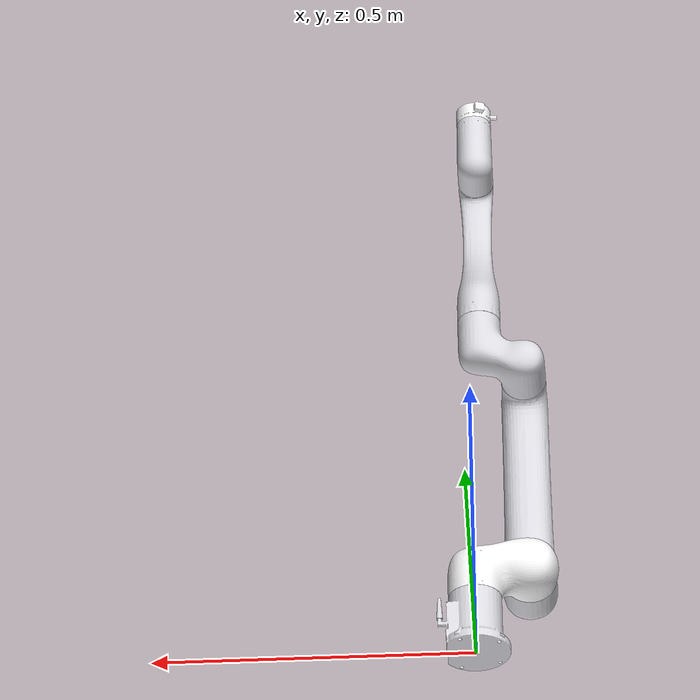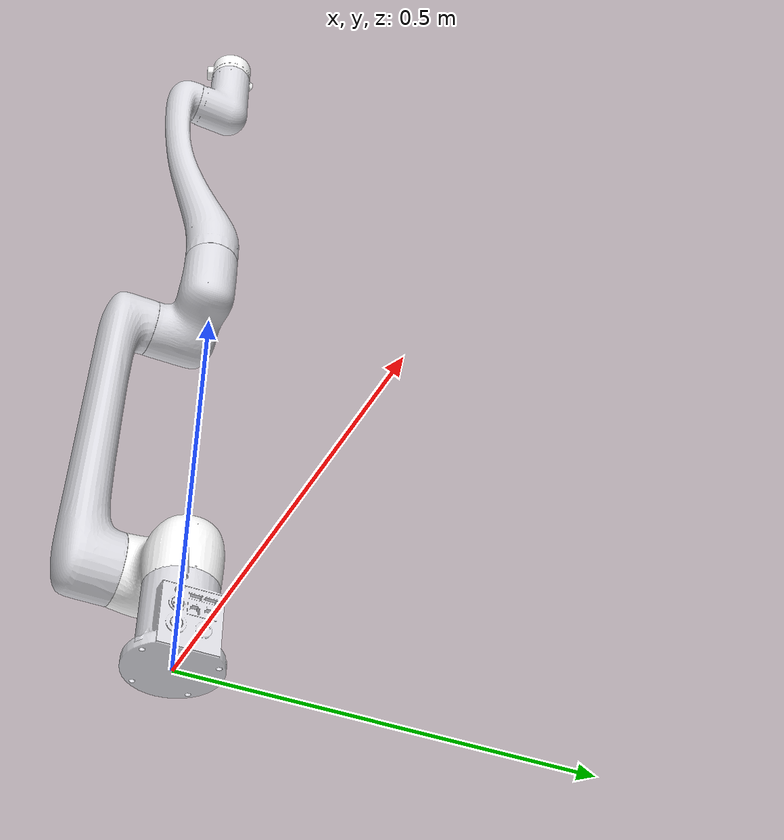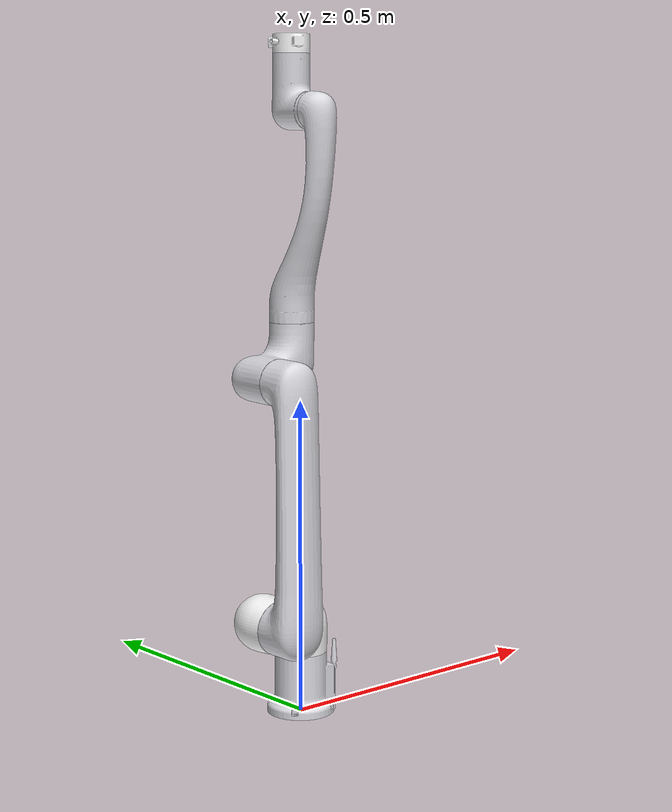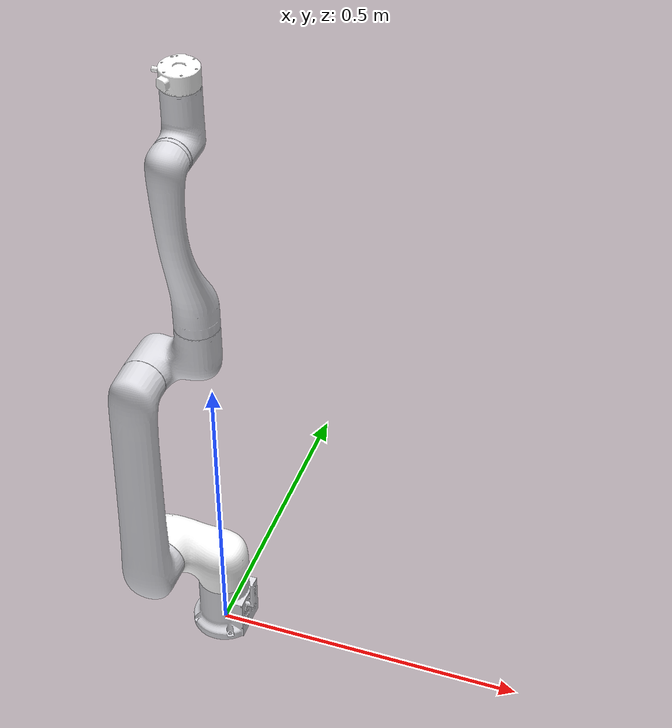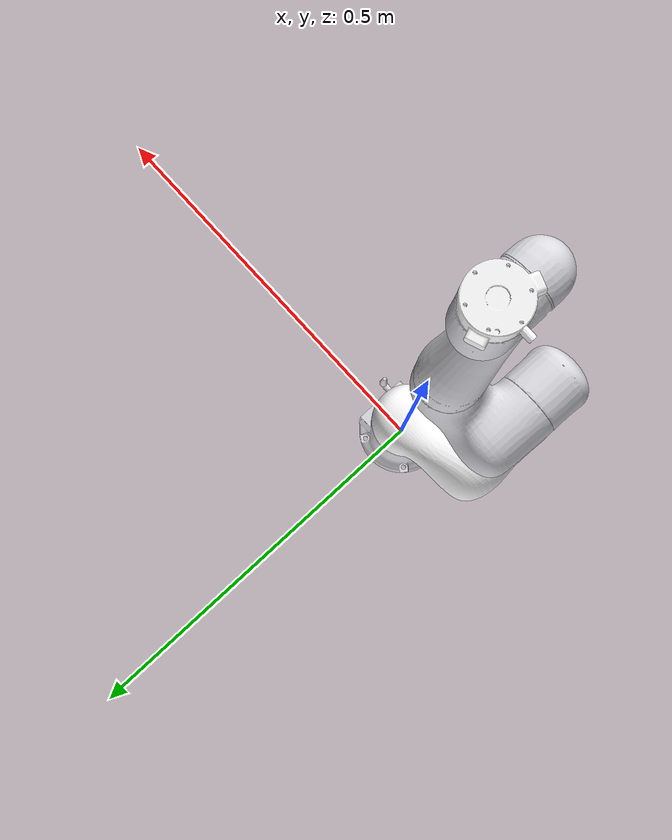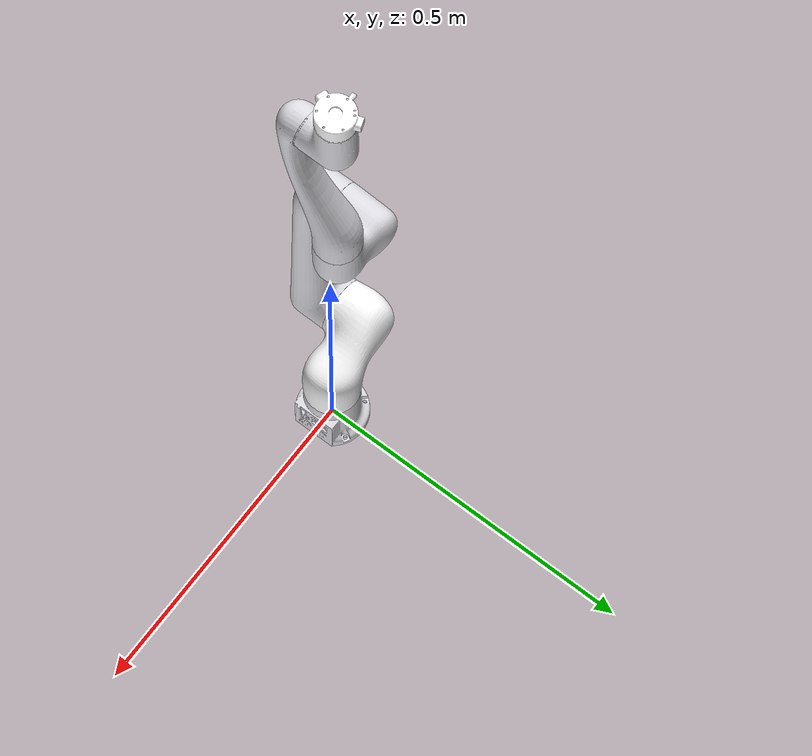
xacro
<?xml version="1.0" encoding="utf-8"?>
<robot  name="rml_63_description" xmlns:xacro="http://www.ros.org/wiki/xacro">
    <!-- link6_type -->
    <xacro:arg name="link6_type" default="Link6" />
    <!-- arg->property -->
    <xacro:property name="link6_type" value="$(arg link6_type)" />
    <link
    name="base_link">
    <inertial>
      <origin
        xyz="0.0002051 -8.259E-05 0.043092"
        rpy="0 0 0" />
      <mass
        value="1.6314" />
      <inertia
        ixx="0.0022252"
        ixy="7.9005E-06"
        ixz="-7.7558E-05"
        iyy="0.0022156"
        iyz="5.9846E-06"
        izz="0.0018513" />
    </inertial>
    <visual>
      <origin
        xyz="0 0 0"
        rpy="0 0 0" />
      <geometry>
        <mesh
          filename="package://rm_description/meshes/rm_63_arm/base_link.STL" />
      </geometry>
      <material
        name="">
        <color
          rgba="0.86667 0.86667 0.8902 1" />
      </material>
    </visual>
    <collision>
      <origin
        xyz="0 0 0"
        rpy="0 0 0" />
      <geometry>
        <mesh
          filename="package://rm_description/meshes/rm_63_arm/base_link.STL" />
      </geometry>
    </collision>
  </link>
  <link
    name="link1">
    <inertial>
      <origin
        xyz="-0.030909 -0.0013023 -0.0053121"
        rpy="0 0 0" />
      <mass
        value="1.7668" />
      <inertia
        ixx="0.0014534"
        ixy="-0.00017578"
        ixz="0.0002802"
        iyy="0.0043772"
        iyz="1.7209E-05"
        izz="0.0040911" />
    </inertial>
    <visual>
      <origin
        xyz="0 0 0"
        rpy="0 0 0" />
      <geometry>
        <mesh
          filename="package://rm_description/meshes/rm_63_arm/link1.STL" />
      </geometry>
      <material
        name="">
        <color
          rgba="1 1 1 1" />
      </material>
    </visual>
    <collision>
      <origin
        xyz="0 0 0"
        rpy="0 0 0" />
      <geometry>
        <mesh
          filename="package://rm_description/meshes/rm_63_arm/link1.STL" />
      </geometry>
    </collision>
  </link>
  <joint
    name="joint1"
    type="revolute">
    <origin
      xyz="0 0 0.1625"
      rpy="0 0 0" />
    <parent
      link="base_link" />
    <child
      link="link1" />
    <axis
      xyz="0 0 -1" />
    <limit
      lower="-3.107"
      upper="3.107"
      effort="100"
      velocity="1" />
  </joint>
  <link
    name="link2">
    <inertial>
      <origin
        xyz="0.16852 9.8217E-07 -0.077258"
        rpy="0 0 0" />
      <mass
        value="4.3415" />
      <inertia
        ixx="0.0028306"
        ixy="3.3846E-07"
        ixz="4.0484E-06"
        iyy="0.075435"
        iyz="-3.3974E-08"
        izz="0.075923" />
    </inertial>
    <visual>
      <origin
        xyz="0 0 0"
        rpy="0 0 0" />
      <geometry>
        <mesh
          filename="package://rm_description/meshes/rm_63_arm/link2.STL" />
      </geometry>
      <material
        name="">
        <color
          rgba="0.86667 0.86667 0.8902 1" />
      </material>
    </visual>
    <collision>
      <origin
        xyz="0 0 0"
        rpy="0 0 0" />
      <geometry>
        <mesh
          filename="package://rm_description/meshes/rm_63_arm/link2.STL" />
      </geometry>
    </collision>
  </link>
  <joint
    name="joint2"
    type="revolute">
    <origin
      xyz="-0.086 0 0"
      rpy="-1.5708 -1.5708 0" />
    <parent
      link="link1" />
    <child
      link="link2" />
    <axis
      xyz="0 0 1" />
    <limit
      lower="-3.107"
      upper="3.107"
      effort="100"
      velocity="1" />
  </joint>
  <link
    name="link3">
    <inertial>
      <origin
        xyz="0.034488 -0.010948 -0.0056239"
        rpy="0 0 0" />
      <mass
        value="1.7286" />
      <inertia
        ixx="0.0014154"
        ixy="0.00068025"
        ixz="-0.00043307"
        iyy="0.0026049"
        iyz="0.00017201"
        izz="0.0028551" />
    </inertial>
    <visual>
      <origin
        xyz="0 0 0"
        rpy="0 0 0" />
      <geometry>
        <mesh
          filename="package://rm_description/meshes/rm_63_arm/link3.STL" />
      </geometry>
      <material
        name="">
        <color
          rgba="0.86667 0.86667 0.8902 1" />
      </material>
    </visual>
    <collision>
      <origin
        xyz="0 0 0"
        rpy="0 0 0" />
      <geometry>
        <mesh
          filename="package://rm_description/meshes/rm_63_arm/link3.STL" />
      </geometry>
    </collision>
  </link>
  <joint
    name="joint3"
    type="revolute">
    <origin
      xyz="0.38 0 0"
      rpy="0 0 1.5708" />
    <parent
      link="link2" />
    <child
      link="link3" />
    <axis
      xyz="0 0 1" />
    <limit
      lower="-3.107"
      upper="2.531"
      effort="100"
      velocity="1" />
  </joint>
  <link
    name="link4">
    <inertial>
      <origin
        xyz="4.1778E-07 -0.030483 -0.19739"
        rpy="0 0 0" />
      <mass
        value="2.4734" />
      <inertia
        ixx="0.02602"
        ixy="-1.1659E-07"
        ixz="3.1323E-07"
        iyy="0.024375"
        iyz="0.0061661"
        izz="0.002958" />
    </inertial>
    <visual>
      <origin
        xyz="0 0 0"
        rpy="0 0 0" />
      <geometry>
        <mesh
          filename="package://rm_description/meshes/rm_63_arm/link4.STL" />
      </geometry>
      <material
        name="">
        <color
          rgba="0.86667 0.86667 0.8902 1" />
      </material>
    </visual>
    <collision>
      <origin
        xyz="0 0 0"
        rpy="0 0 0" />
      <geometry>
        <mesh
          filename="package://rm_description/meshes/rm_63_arm/link4.STL" />
      </geometry>
    </collision>
  </link>
  <joint
    name="joint4"
    type="revolute">
    <origin
      xyz="0.069 -0.405 0"
      rpy="1.5708 0 0" />
    <parent
      link="link3" />
    <child
      link="link4" />
    <axis
      xyz="0 0 -1" />
    <limit
      lower="-3.107"
      upper="3.107"
      effort="100"
      velocity="1" />
  </joint>
  <link
    name="link5">
    <inertial>
      <origin
        xyz="5.2596E-06 0.025125 -0.0072574"
        rpy="0 0 0" />
      <mass
        value="0.93162" />
      <inertia
        ixx="0.0012563"
        ixy="-1.8115E-08"
        ixz="-2.4669E-09"
        iyy="0.0005379"
        iyz="-0.00017339"
        izz="0.0011134" />
    </inertial>
    <visual>
      <origin
        xyz="0 0 0"
        rpy="0 0 0" />
      <geometry>
        <mesh
          filename="package://rm_description/meshes/rm_63_arm/link5.STL" />
      </geometry>
      <material
        name="">
        <color
          rgba="0.86667 0.86667 0.8902 1" />
      </material>
    </visual>
    <collision>
      <origin
        xyz="0 0 0"
        rpy="0 0 0" />
      <geometry>
        <mesh
          filename="package://rm_description/meshes/rm_63_arm/link5.STL" />
      </geometry>
    </collision>
  </link>
  <joint
    name="joint5"
    type="revolute">
    <origin
      xyz="0 0 0"
      rpy="1.5708 0 3.1416" />
    <parent
      link="link4" />
    <child
      link="link5" />
    <axis
      xyz="0 0 -1" />
    <limit
      lower="-3.107"
      upper="3.107"
      effort="100"
      velocity="1" />
  </joint>
  <xacro:if value="${ link6_type =='Link6' }">
    <link
    name="link6">
    <inertial>
      <origin
        xyz="-0.00092265 9.4391E-05 -0.012705"
        rpy="0 0 0" />
      <mass
        value="0.065037" />
      <inertia
        ixx="2.1144E-05"
        ixy="-2.2803E-08"
        ixz="2.5415E-08"
        iyy="1.8109E-05"
        iyz="1.0256E-08"
        izz="3.19E-05" />
    </inertial>
    <visual>
      <origin
        xyz="0 0 0"
        rpy="0 0 0" />
      <geometry>
        <mesh
          filename="package://rm_description/meshes/rm_63_arm/link6.STL" />
      </geometry>
      <material
        name="">
        <color
          rgba="1 1 1 1" />
      </material>
    </visual>
    <collision>
      <origin
        xyz="0 0 0"
        rpy="0 0 0" />
      <geometry>
        <mesh
          filename="package://rm_description/meshes/rm_63_arm/link6.STL" />
      </geometry>
    </collision>
  </link>
  <joint
    name="joint6"
    type="revolute">
    <origin
      xyz="-0.00010308 0.115 -0.00010734"
      rpy="1.5708 0 3.1416" />
    <parent
      link="link5" />
    <child
      link="link6" />
    <axis
      xyz="0 0 -1" />
    <limit
      lower="-3.14"
      upper="3.14"
      effort="100"
      velocity="1" />
  </joint>
    </xacro:if>
    <xacro:if value="${ link6_type =='Link6_6f' }">
      <link
    name="link6">
    <inertial>
      <origin
        xyz="-0.00032091 0.00017748 -0.028468"
        rpy="0 0 0" />
      <mass
        value="0.14814" />
      <inertia
        ixx="7.2093E-05"
        ixy="-1.2989E-06"
        ixz="7.9524E-07"
        iyy="7.063E-05"
        iyz="-4.3017E-07"
        izz="6.2819E-05" />
    </inertial>
    <visual>
      <origin
        xyz="0 0 0"
        rpy="0 0 0" />
      <geometry>
        <mesh
          filename="package://rm_description/meshes/rm_63_arm/link6_6f.STL" />
      </geometry>
      <material
        name="">
        <color
          rgba="1 1 1 1" />
      </material>
    </visual>
    <collision>
      <origin
        xyz="0 0 0"
        rpy="0 0 0" />
      <geometry>
        <mesh
          filename="package://rm_description/meshes/rm_63_arm/link6_6f.STL" />
      </geometry>
    </collision>
  </link>
  <joint
    name="joint6"
    type="revolute">
    <origin
      xyz="0 0.1435 0"
      rpy="1.5708 0 -3.1416" />
    <parent
      link="link5" />
    <child
      link="link6" />
    <axis
      xyz="0 0 1" />
    <limit
      lower="-6.283"
      upper="6.283"
      effort="100"
      velocity="1" />
  </joint>
    </xacro:if>
    <xacro:if value="${ link6_type =='Link6_6fb' }">
       <link
    name="link6">
    <inertial>
      <origin
        xyz="-3.305E-05 -7.0431E-06 -0.023738"
        rpy="0 0 0" />
      <mass
        value="0.3056" />
      <inertia
        ixx="0.00011383"
        ixy="-3.6531E-08"
        ixz="-1.1422E-07"
        iyy="0.00011469"
        iyz="4.3479E-08"
        izz="0.00012619" />
    </inertial>
    <visual>
      <origin
        xyz="0 0 0"
        rpy="0 0 0" />
      <geometry>
        <mesh
          filename="package://rm_description/meshes/rm_63_arm/link6_6fb.STL" />
      </geometry>
      <material
        name="">
        <color
          rgba="0.86667 0.86667 0.8902 1" />
      </material>
    </visual>
    <collision>
      <origin
        xyz="0 0 0"
        rpy="0 0 0" />
      <geometry>
        <mesh
          filename="package://rm_description/meshes/rm_63_arm/link6_6fb.STL" />
      </geometry>
    </collision>
  </link>
  <joint
    name="joint6"
    type="revolute">
    <origin
      xyz="0 0.1322 0"
      rpy="1.5708 0 3.1416" />
    <parent
      link="link5" />
    <child
      link="link6" />
    <axis
      xyz="0 0 -1" />
    <limit
      lower="-3.14"
      upper="3.14"
      effort="100"
      velocity="1" />
  </joint>

    </xacro:if>
</robot>
